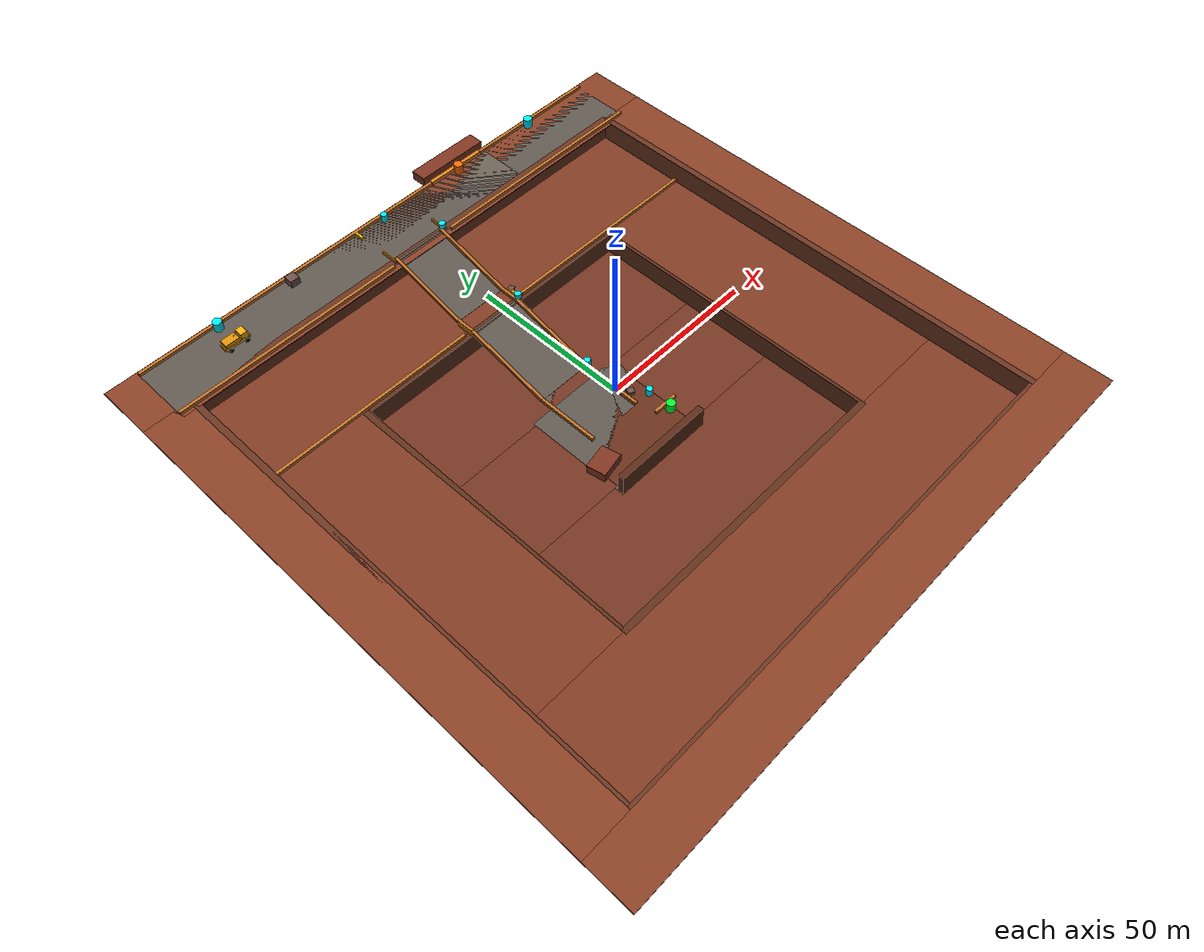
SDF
<sdf version="1.9">
  <world name="sih_mine_world">

    <gravity>0 0 -9.81</gravity>
    <physics name="1ms" type="ode">
      <max_step_size>0.001</max_step_size>
      <real_time_factor>1</real_time_factor>
      <real_time_update_rate>1000</real_time_update_rate>
    </physics>

    <plugin filename="gz-sim-physics-system" name="gz::sim::systems::Physics" />
    <plugin filename="gz-sim-user-commands-system" name="gz::sim::systems::UserCommands" />
    <plugin filename="gz-sim-scene-broadcaster-system" name="gz::sim::systems::SceneBroadcaster" />
    <plugin filename="gz-sim-sensors-system" name="gz::sim::systems::Sensors">
      <render_engine>ogre2</render_engine>
    </plugin>
    <plugin filename="gz-sim-imu-system" name="gz::sim::systems::Imu" />
    <plugin filename="gz-sim-navsat-system" name="gz::sim::systems::NavSat" />

    <spherical_coordinates>
      <surface_model>EARTH_WGS84</surface_model>
      <world_frame_orientation>ENU</world_frame_orientation>
      <latitude_deg>21.9167</latitude_deg>
      <longitude_deg>85.3333</longitude_deg>
      <elevation>450.0</elevation>
      <heading_deg>0</heading_deg>
    </spherical_coordinates>

    <scene>
      <ambient>0.48 0.45 0.42 1</ambient>
      <background>0.55 0.65 0.78 1</background>
      <shadows>true</shadows>
    </scene>
    <light name="sun" type="directional">
      <cast_shadows>true</cast_shadows>
      <pose>0 0 60 0.5 0.2 0</pose>
      <diffuse>0.95 0.90 0.82 1</diffuse>
      <specular>0.25 0.25 0.20 1</specular>
      <direction>-0.3 0.3 -1</direction>
    </light>

    <model name="Bench1_North">
      <static>true</static>
      <pose>0 87.5 -0.15 0 0 0</pose>
      <link name="link">
        <collision name="collision"><geometry><box><size>190.0 22.0 0.3</size></box></geometry><surface><friction><ode><mu>0.9</mu><mu2>0.9</mu2></ode></friction></surface></collision>
        <visual name="visual"><geometry><box><size>190.0 22.0 0.3</size></box></geometry><material><ambient>0.52 0.24 0.14 1</ambient><diffuse>0.52 0.24 0.14 1</diffuse></material></visual>
      </link>
    </model>
    <model name="Bench1_South">
      <static>true</static>
      <pose>0 -87.5 -0.15 0 0 0</pose>
      <link name="link">
        <collision name="collision"><geometry><box><size>190.0 15.0 0.3</size></box></geometry><surface><friction><ode><mu>0.9</mu><mu2>0.9</mu2></ode></friction></surface></collision>
        <visual name="visual"><geometry><box><size>190.0 15.0 0.3</size></box></geometry><material><ambient>0.52 0.24 0.14 1</ambient><diffuse>0.52 0.24 0.14 1</diffuse></material></visual>
      </link>
    </model>
    <model name="Bench1_East">
      <static>true</static>
      <pose>87.5 0 -0.15 0 0 0</pose>
      <link name="link">
        <collision name="collision"><geometry><box><size>15.0 160.0 0.3</size></box></geometry><surface><friction><ode><mu>0.9</mu><mu2>0.9</mu2></ode></friction></surface></collision>
        <visual name="visual"><geometry><box><size>15.0 160.0 0.3</size></box></geometry><material><ambient>0.52 0.24 0.14 1</ambient><diffuse>0.52 0.24 0.14 1</diffuse></material></visual>
      </link>
    </model>
    <model name="Bench1_West">
      <static>true</static>
      <pose>-87.5 0 -0.15 0 0 0</pose>
      <link name="link">
        <collision name="collision"><geometry><box><size>15.0 160.0 0.3</size></box></geometry><surface><friction><ode><mu>0.9</mu><mu2>0.9</mu2></ode></friction></surface></collision>
        <visual name="visual"><geometry><box><size>15.0 160.0 0.3</size></box></geometry><material><ambient>0.52 0.24 0.14 1</ambient><diffuse>0.52 0.24 0.14 1</diffuse></material></visual>
      </link>
    </model>

    <model name="Bench2_North">
      <static>true</static>
      <pose>0 64.0 -7.15 0 0 0</pose>
      <link name="link">
        <collision name="collision"><geometry><box><size>160.0 32.0 0.3</size></box></geometry><surface><friction><ode><mu>0.9</mu><mu2>0.9</mu2></ode></friction></surface></collision>
        <visual name="visual"><geometry><box><size>160.0 32.0 0.3</size></box></geometry><material><ambient>0.48 0.22 0.13 1</ambient><diffuse>0.48 0.22 0.13 1</diffuse></material></visual>
      </link>
    </model>
    <model name="Bench2_South">
      <static>true</static>
      <pose>0 -64.0 -7.15 0 0 0</pose>
      <link name="link">
        <collision name="collision"><geometry><box><size>160.0 32.0 0.3</size></box></geometry><surface><friction><ode><mu>0.9</mu><mu2>0.9</mu2></ode></friction></surface></collision>
        <visual name="visual"><geometry><box><size>160.0 32.0 0.3</size></box></geometry><material><ambient>0.48 0.22 0.13 1</ambient><diffuse>0.48 0.22 0.13 1</diffuse></material></visual>
      </link>
    </model>
    <model name="Bench2_East">
      <static>true</static>
      <pose>64.0 0 -7.15 0 0 0</pose>
      <link name="link">
        <collision name="collision"><geometry><box><size>32.0 96.0 0.3</size></box></geometry><surface><friction><ode><mu>0.9</mu><mu2>0.9</mu2></ode></friction></surface></collision>
        <visual name="visual"><geometry><box><size>32.0 96.0 0.3</size></box></geometry><material><ambient>0.48 0.22 0.13 1</ambient><diffuse>0.48 0.22 0.13 1</diffuse></material></visual>
      </link>
    </model>
    <model name="Bench2_West">
      <static>true</static>
      <pose>-64.0 0 -7.15 0 0 0</pose>
      <link name="link">
        <collision name="collision"><geometry><box><size>32.0 96.0 0.3</size></box></geometry><surface><friction><ode><mu>0.9</mu><mu2>0.9</mu2></ode></friction></surface></collision>
        <visual name="visual"><geometry><box><size>32.0 96.0 0.3</size></box></geometry><material><ambient>0.48 0.22 0.13 1</ambient><diffuse>0.48 0.22 0.13 1</diffuse></material></visual>
      </link>
    </model>

    <model name="Bench3_North">
      <static>true</static>
      <pose>0 31.5 -14.15 0 0 0</pose>
      <link name="link">
        <collision name="collision"><geometry><box><size>96.0 33.0 0.3</size></box></geometry><surface><friction><ode><mu>0.9</mu><mu2>0.9</mu2></ode></friction></surface></collision>
        <visual name="visual"><geometry><box><size>96.0 33.0 0.3</size></box></geometry><material><ambient>0.44 0.20 0.12 1</ambient><diffuse>0.44 0.20 0.12 1</diffuse></material></visual>
      </link>
    </model>
    <model name="Bench3_South">
      <static>true</static>
      <pose>0 -31.5 -14.15 0 0 0</pose>
      <link name="link">
        <collision name="collision"><geometry><box><size>96.0 33.0 0.3</size></box></geometry><surface><friction><ode><mu>0.9</mu><mu2>0.9</mu2></ode></friction></surface></collision>
        <visual name="visual"><geometry><box><size>96.0 33.0 0.3</size></box></geometry><material><ambient>0.44 0.20 0.12 1</ambient><diffuse>0.44 0.20 0.12 1</diffuse></material></visual>
      </link>
    </model>
    <model name="Bench3_East">
      <static>true</static>
      <pose>31.5 0 -14.15 0 0 0</pose>
      <link name="link">
        <collision name="collision"><geometry><box><size>33.0 30.0 0.3</size></box></geometry><surface><friction><ode><mu>0.9</mu><mu2>0.9</mu2></ode></friction></surface></collision>
        <visual name="visual"><geometry><box><size>33.0 30.0 0.3</size></box></geometry><material><ambient>0.44 0.20 0.12 1</ambient><diffuse>0.44 0.20 0.12 1</diffuse></material></visual>
      </link>
    </model>
    <model name="Bench3_West">
      <static>true</static>
      <pose>-31.5 0 -14.15 0 0 0</pose>
      <link name="link">
        <collision name="collision"><geometry><box><size>33.0 30.0 0.3</size></box></geometry><surface><friction><ode><mu>0.9</mu><mu2>0.9</mu2></ode></friction></surface></collision>
        <visual name="visual"><geometry><box><size>33.0 30.0 0.3</size></box></geometry><material><ambient>0.44 0.20 0.12 1</ambient><diffuse>0.44 0.20 0.12 1</diffuse></material></visual>
      </link>
    </model>
    <model name="Mine_Floor">
      <static>true</static>
      <pose>0 0 -14.15 0 0 0</pose>
      <link name="link">
        <collision name="collision"><geometry><box><size>30.0 30.0 0.3</size></box></geometry><surface><friction><ode><mu>0.9</mu><mu2>0.9</mu2></ode></friction></surface></collision>
        <visual name="visual"><geometry><box><size>30.0 30.0 0.3</size></box></geometry><material><ambient>0.40 0.18 0.10 1</ambient><diffuse>0.40 0.18 0.10 1</diffuse></material></visual>
      </link>
    </model>

    <model name="Wall1_North"><static>true</static><pose>0 80.0 -3.5 0 0 0</pose><link name="link"><collision name="collision"><geometry><box><size>160.0 2.0 7.0</size></box></geometry></collision><visual name="visual"><geometry><box><size>160.0 2.0 7.0</size></box></geometry><material><ambient>0.40 0.20 0.12 1</ambient><diffuse>0.40 0.20 0.12 1</diffuse></material></visual></link></model>
    <model name="Wall1_South"><static>true</static><pose>0 -80.0 -3.5 0 0 0</pose><link name="link"><collision name="collision"><geometry><box><size>160.0 2.0 7.0</size></box></geometry></collision><visual name="visual"><geometry><box><size>160.0 2.0 7.0</size></box></geometry><material><ambient>0.40 0.20 0.12 1</ambient><diffuse>0.40 0.20 0.12 1</diffuse></material></visual></link></model>
    <model name="Wall1_East"><static>true</static><pose>80.0 0 -3.5 0 0 0</pose><link name="link"><collision name="collision"><geometry><box><size>2.0 160.0 7.0</size></box></geometry></collision><visual name="visual"><geometry><box><size>2.0 160.0 7.0</size></box></geometry><material><ambient>0.40 0.20 0.12 1</ambient><diffuse>0.40 0.20 0.12 1</diffuse></material></visual></link></model>
    <model name="Wall1_West"><static>true</static><pose>-80.0 0 -3.5 0 0 0</pose><link name="link"><collision name="collision"><geometry><box><size>2.0 160.0 7.0</size></box></geometry></collision><visual name="visual"><geometry><box><size>2.0 160.0 7.0</size></box></geometry><material><ambient>0.40 0.20 0.12 1</ambient><diffuse>0.40 0.20 0.12 1</diffuse></material></visual></link></model>

    <model name="Wall2_North"><static>true</static><pose>0 48.0 -10.5 0 0 0</pose><link name="link"><collision name="collision"><geometry><box><size>96.0 2.0 7.0</size></box></geometry></collision><visual name="visual"><geometry><box><size>96.0 2.0 7.0</size></box></geometry><material><ambient>0.36 0.18 0.10 1</ambient><diffuse>0.36 0.18 0.10 1</diffuse></material></visual></link></model>
    <model name="Wall2_South"><static>true</static><pose>0 -48.0 -10.5 0 0 0</pose><link name="link"><collision name="collision"><geometry><box><size>96.0 2.0 7.0</size></box></geometry></collision><visual name="visual"><geometry><box><size>96.0 2.0 7.0</size></box></geometry><material><ambient>0.36 0.18 0.10 1</ambient><diffuse>0.36 0.18 0.10 1</diffuse></material></visual></link></model>
    <model name="Wall2_East"><static>true</static><pose>48.0 0 -10.5 0 0 0</pose><link name="link"><collision name="collision"><geometry><box><size>2.0 96.0 7.0</size></box></geometry></collision><visual name="visual"><geometry><box><size>2.0 96.0 7.0</size></box></geometry><material><ambient>0.36 0.18 0.10 1</ambient><diffuse>0.36 0.18 0.10 1</diffuse></material></visual></link></model>
    <model name="Wall2_West"><static>true</static><pose>-48.0 0 -10.5 0 0 0</pose><link name="link"><collision name="collision"><geometry><box><size>2.0 96.0 7.0</size></box></geometry></collision><visual name="visual"><geometry><box><size>2.0 96.0 7.0</size></box></geometry><material><ambient>0.36 0.18 0.10 1</ambient><diffuse>0.36 0.18 0.10 1</diffuse></material></visual></link></model>

    <model name="Road_Spawn_Apron">
      <static>true</static>
      <pose>0 87.5 -0.15 0 0 0</pose>
      <link name="link">
        <collision name="collision"><geometry><box><size>170 18.0 0.3</size></box></geometry><surface><friction><ode><mu>1.0</mu><mu2>0.9</mu2></ode></friction></surface></collision>
        <visual name="visual"><geometry><box><size>170 18.0 0.3</size></box></geometry><material><ambient>0.36 0.33 0.30 1</ambient><diffuse>0.36 0.33 0.30 1</diffuse></material></visual>
      </link>
    </model>
    <model name="Ramp_01">
      <static>true</static>
      <pose>0 67.0 -3.5 -2.8785979219088738 0 0</pose>
      <link name="link">
        <collision name="collision"><geometry><box><size>16.0 26.92582403567252 0.3</size></box></geometry><surface><friction><ode><mu>1.0</mu><mu2>0.9</mu2></ode></friction></surface></collision>
        <visual name="visual"><geometry><box><size>16.0 26.92582403567252 0.3</size></box></geometry><material><ambient>0.36 0.33 0.30 1</ambient><diffuse>0.36 0.33 0.30 1</diffuse></material></visual>
      </link>
    </model>
    <model name="Road_Level2_Connector">
      <static>true</static>
      <pose>0 51.0 -7.15 0 0 0</pose>
      <link name="link">
        <collision name="collision"><geometry><box><size>16.0 6.0 0.3</size></box></geometry><surface><friction><ode><mu>1.0</mu><mu2>0.9</mu2></ode></friction></surface></collision>
        <visual name="visual"><geometry><box><size>16.0 6.0 0.3</size></box></geometry><material><ambient>0.36 0.33 0.30 1</ambient><diffuse>0.36 0.33 0.30 1</diffuse></material></visual>
      </link>
    </model>
    <model name="Ramp_02">
      <static>true</static>
      <pose>0 34.0 -10.5 -2.896613990462929 0 0</pose>
      <link name="link">
        <collision name="collision"><geometry><box><size>16.0 28.861739379323623 0.3</size></box></geometry><surface><friction><ode><mu>1.0</mu><mu2>0.9</mu2></ode></friction></surface></collision>
        <visual name="visual"><geometry><box><size>16.0 28.861739379323623 0.3</size></box></geometry><material><ambient>0.36 0.33 0.30 1</ambient><diffuse>0.36 0.33 0.30 1</diffuse></material></visual>
      </link>
    </model>
    <model name="Road_Floor_to_Loading">
      <static>true</static>
      <pose>0 10.0 -14.15 0 0 0</pose>
      <link name="link">
        <collision name="collision"><geometry><box><size>16.0 20.0 0.3</size></box></geometry><surface><friction><ode><mu>1.0</mu><mu2>0.9</mu2></ode></friction></surface></collision>
        <visual name="visual"><geometry><box><size>16.0 20.0 0.3</size></box></geometry><material><ambient>0.36 0.33 0.30 1</ambient><diffuse>0.36 0.33 0.30 1</diffuse></material></visual>
      </link>
    </model>
    <model name="Turning_Area_Loading">
      <static>true</static>
      <pose>0 0.0 -14.15 0 0 0</pose>
      <link name="link">
        <collision name="collision"><geometry><box><size>32 32 0.3</size></box></geometry><surface><friction><ode><mu>1.0</mu><mu2>0.9</mu2></ode></friction></surface></collision>
        <visual name="visual"><geometry><box><size>32 32 0.3</size></box></geometry><material><ambient>0.36 0.33 0.30 1</ambient><diffuse>0.36 0.33 0.30 1</diffuse></material></visual>
      </link>
    </model>
    <model name="Dumping_Zone_Pad">
      <static>true</static>
      <pose>30 87.5 -0.15 0 0 0</pose>
      <link name="link">
        <collision name="collision"><geometry><box><size>24 18.0 0.3</size></box></geometry><surface><friction><ode><mu>1.0</mu><mu2>0.9</mu2></ode></friction></surface></collision>
        <visual name="visual"><geometry><box><size>24 18.0 0.3</size></box></geometry><material><ambient>0.40 0.36 0.32 1</ambient><diffuse>0.40 0.36 0.32 1</diffuse></material></visual>
      </link>
    </model>

    <model name="Berm_Apron_North">
      <static>true</static>
      <pose>0 97.0 0.5 0 0 0</pose>
      <link name="link">
        <collision name="collision"><geometry><box><size>170.0 1.0 1.0</size></box></geometry><surface><friction><ode><mu>0.8</mu><mu2>0.8</mu2></ode></friction></surface></collision>
        <visual name="visual"><geometry><box><size>170.0 1.0 1.0</size></box></geometry><material><ambient>0.72 0.42 0.15 1</ambient><diffuse>0.72 0.42 0.15 1</diffuse></material></visual>
      </link>
    </model>

    <model name="Berm_Apron_South_West">
      <static>true</static>
      <pose>-48.0 78.0 0.5 0 0 0</pose>
      <link name="link">
        <collision name="collision"><geometry><box><size>74.0 1.0 1.0</size></box></geometry><surface><friction><ode><mu>0.8</mu><mu2>0.8</mu2></ode></friction></surface></collision>
        <visual name="visual"><geometry><box><size>74.0 1.0 1.0</size></box></geometry><material><ambient>0.72 0.42 0.15 1</ambient><diffuse>0.72 0.42 0.15 1</diffuse></material></visual>
      </link>
    </model>

    <model name="Berm_Apron_South_East">
      <static>true</static>
      <pose>48.0 78.0 0.5 0 0 0</pose>
      <link name="link">
        <collision name="collision"><geometry><box><size>74.0 1.0 1.0</size></box></geometry><surface><friction><ode><mu>0.8</mu><mu2>0.8</mu2></ode></friction></surface></collision>
        <visual name="visual"><geometry><box><size>74.0 1.0 1.0</size></box></geometry><material><ambient>0.72 0.42 0.15 1</ambient><diffuse>0.72 0.42 0.15 1</diffuse></material></visual>
      </link>
    </model>

    <model name="Berm_Ramp01_Left">
      <static>true</static>
      <pose>-8.6 67.0 -3.0 -2.8785979219088738 0 0</pose>
      <link name="link">
        <collision name="collision"><geometry><box><size>1.0 26.9 1.0</size></box></geometry><surface><friction><ode><mu>0.8</mu><mu2>0.8</mu2></ode></friction></surface></collision>
        <visual name="visual"><geometry><box><size>1.0 26.9 1.0</size></box></geometry><material><ambient>0.72 0.42 0.15 1</ambient><diffuse>0.72 0.42 0.15 1</diffuse></material></visual>
      </link>
    </model>

    <model name="Berm_Ramp01_Right">
      <static>true</static>
      <pose>8.6 67.0 -3.0 -2.8785979219088738 0 0</pose>
      <link name="link">
        <collision name="collision"><geometry><box><size>1.0 26.9 1.0</size></box></geometry><surface><friction><ode><mu>0.8</mu><mu2>0.8</mu2></ode></friction></surface></collision>
        <visual name="visual"><geometry><box><size>1.0 26.9 1.0</size></box></geometry><material><ambient>0.72 0.42 0.15 1</ambient><diffuse>0.72 0.42 0.15 1</diffuse></material></visual>
      </link>
    </model>

    <model name="Berm_Bench2_West">
      <static>true</static>
      <pose>-8.6 51.0 -6.5 0 0 0</pose>
      <link name="link">
        <collision name="collision"><geometry><box><size>1.0 6.0 1.0</size></box></geometry><surface><friction><ode><mu>0.8</mu><mu2>0.8</mu2></ode></friction></surface></collision>
        <visual name="visual"><geometry><box><size>1.0 6.0 1.0</size></box></geometry><material><ambient>0.72 0.42 0.15 1</ambient><diffuse>0.72 0.42 0.15 1</diffuse></material></visual>
      </link>
    </model>
    <model name="Berm_Bench2_East">
      <static>true</static>
      <pose>8.6 51.0 -6.5 0 0 0</pose>
      <link name="link">
        <collision name="collision"><geometry><box><size>1.0 6.0 1.0</size></box></geometry><surface><friction><ode><mu>0.8</mu><mu2>0.8</mu2></ode></friction></surface></collision>
        <visual name="visual"><geometry><box><size>1.0 6.0 1.0</size></box></geometry><material><ambient>0.72 0.42 0.15 1</ambient><diffuse>0.72 0.42 0.15 1</diffuse></material></visual>
      </link>
    </model>

    <model name="Berm_Bench2_Dropoff_West">
      <static>true</static>
      <pose>-48.0 48.5 -6.5 0 0 0</pose>
      <link name="link">
        <collision name="collision"><geometry><box><size>74.0 1.0 1.0</size></box></geometry><surface><friction><ode><mu>0.8</mu><mu2>0.8</mu2></ode></friction></surface></collision>
        <visual name="visual"><geometry><box><size>74.0 1.0 1.0</size></box></geometry><material><ambient>0.72 0.42 0.15 1</ambient><diffuse>0.72 0.42 0.15 1</diffuse></material></visual>
      </link>
    </model>
    <model name="Berm_Bench2_Dropoff_East">
      <static>true</static>
      <pose>48.0 48.5 -6.5 0 0 0</pose>
      <link name="link">
        <collision name="collision"><geometry><box><size>74.0 1.0 1.0</size></box></geometry><surface><friction><ode><mu>0.8</mu><mu2>0.8</mu2></ode></friction></surface></collision>
        <visual name="visual"><geometry><box><size>74.0 1.0 1.0</size></box></geometry><material><ambient>0.72 0.42 0.15 1</ambient><diffuse>0.72 0.42 0.15 1</diffuse></material></visual>
      </link>
    </model>

    <model name="Berm_Ramp02_Left">
      <static>true</static>
      <pose>-8.6 34.0 -10.0 -2.896613990462929 0 0</pose>
      <link name="link">
        <collision name="collision"><geometry><box><size>1.0 28.8 1.0</size></box></geometry><surface><friction><ode><mu>0.8</mu><mu2>0.8</mu2></ode></friction></surface></collision>
        <visual name="visual"><geometry><box><size>1.0 28.8 1.0</size></box></geometry><material><ambient>0.72 0.42 0.15 1</ambient><diffuse>0.72 0.42 0.15 1</diffuse></material></visual>
      </link>
    </model>

    <model name="Berm_Ramp02_Right">
      <static>true</static>
      <pose>8.6 34.0 -10.0 -2.896613990462929 0 0</pose>
      <link name="link">
        <collision name="collision"><geometry><box><size>1.0 28.8 1.0</size></box></geometry><surface><friction><ode><mu>0.8</mu><mu2>0.8</mu2></ode></friction></surface></collision>
        <visual name="visual"><geometry><box><size>1.0 28.8 1.0</size></box></geometry><material><ambient>0.72 0.42 0.15 1</ambient><diffuse>0.72 0.42 0.15 1</diffuse></material></visual>
      </link>
    </model>

    <model name="Berm_PitFloor_West">
      <static>true</static>
      <pose>-8.6 10.0 -13.5 0 0 0</pose>
      <link name="link">
        <collision name="collision"><geometry><box><size>1.0 20.0 1.0</size></box></geometry><surface><friction><ode><mu>0.8</mu><mu2>0.8</mu2></ode></friction></surface></collision>
        <visual name="visual"><geometry><box><size>1.0 20.0 1.0</size></box></geometry><material><ambient>0.72 0.42 0.15 1</ambient><diffuse>0.72 0.42 0.15 1</diffuse></material></visual>
      </link>
    </model>
    <model name="Berm_PitFloor_East">
      <static>true</static>
      <pose>8.6 10.0 -13.5 0 0 0</pose>
      <link name="link">
        <collision name="collision"><geometry><box><size>1.0 20.0 1.0</size></box></geometry><surface><friction><ode><mu>0.8</mu><mu2>0.8</mu2></ode></friction></surface></collision>
        <visual name="visual"><geometry><box><size>1.0 20.0 1.0</size></box></geometry><material><ambient>0.72 0.42 0.15 1</ambient><diffuse>0.72 0.42 0.15 1</diffuse></material></visual>
      </link>
    </model>

    <model name="Rock_Hazard_01">
      <static>true</static>
      <pose>-35.0 94.5 1.25 0 0 0</pose>
      <link name="link">
        <collision name="collision">
          <geometry><box><size>3.0 3.0 2.5</size></box></geometry>
          <surface><friction><ode><mu>0.9</mu><mu2>0.9</mu2></ode></friction></surface>
        </collision>
        <visual name="visual">
          <geometry><box><size>3.0 3.0 2.5</size></box></geometry>
          <material><ambient>0.42 0.30 0.28 1</ambient><diffuse>0.42 0.30 0.28 1</diffuse></material>
        </visual>
      </link>
    </model>

    <model name="Rock_Hazard_02">
      <static>true</static>
      <pose>10.5 52.0 -6.5 0 0 0.5</pose>
      <link name="link">
        <collision name="collision">
          <geometry><box><size>1.8 1.6 1.0</size></box></geometry>
          <surface><friction><ode><mu>0.9</mu><mu2>0.9</mu2></ode></friction></surface>
        </collision>
        <visual name="visual">
          <geometry><box><size>1.8 1.6 1.0</size></box></geometry>
          <material><ambient>0.42 0.30 0.28 1</ambient><diffuse>0.42 0.30 0.28 1</diffuse></material>
        </visual>
      </link>
    </model>

    <model name="Rock_Hazard_03">
      <static>true</static>
      <pose>10.5 4.0 -13.4 0 0 -0.4</pose>
      <link name="link">
        <collision name="collision">
          <geometry><box><size>2.0 1.8 1.2</size></box></geometry>
          <surface><friction><ode><mu>0.9</mu><mu2>0.9</mu2></ode></friction></surface>
        </collision>
        <visual name="visual">
          <geometry><box><size>2.0 1.8 1.2</size></box></geometry>
          <material><ambient>0.42 0.30 0.28 1</ambient><diffuse>0.42 0.30 0.28 1</diffuse></material>
        </visual>
      </link>
    </model>

    <model name="Safety_Barrier_Metal_01">
      <static>true</static>
      <pose>-10.0 95.0 0.5 0 0 0</pose>
      <link name="link">
        <collision name="collision">
          <geometry><box><size>0.8 3.0 1.0</size></box></geometry>
          <surface><friction><ode><mu>0.7</mu><mu2>0.7</mu2></ode></friction></surface>
        </collision>
        <visual name="visual">
          <geometry><box><size>0.8 3.0 1.0</size></box></geometry>
          <material><ambient>0.95 0.75 0.05 1</ambient><diffuse>0.95 0.75 0.05 1</diffuse></material>
        </visual>
      </link>
    </model>

    <model name="Safety_Barrier_Metal_02">
      <static>true</static>
      <pose>10.0 50.0 -6.5 0 0 0</pose>
      <link name="link">
        <collision name="collision">
          <geometry><box><size>0.8 3.5 1.0</size></box></geometry>
          <surface><friction><ode><mu>0.7</mu><mu2>0.7</mu2></ode></friction></surface>
        </collision>
        <visual name="visual">
          <geometry><box><size>0.8 3.5 1.0</size></box></geometry>
          <material><ambient>0.95 0.75 0.05 1</ambient><diffuse>0.95 0.75 0.05 1</diffuse></material>
        </visual>
      </link>
    </model>

    <model name="Barrier_Ramp01_Left"><static>true</static><pose>-9.5 82.0 0.5 0 0 1.5707963267948966</pose><link name="link"><collision name="collision"><geometry><box><size>6.0 0.4 1.0</size></box></geometry><surface><friction><ode><mu>0.5</mu><mu2>0.5</mu2></ode></friction></surface></collision><visual name="visual"><geometry><box><size>6.0 0.4 1.0</size></box></geometry><material><ambient>0.95 0.55 0.05 1</ambient><diffuse>0.95 0.55 0.05 1</diffuse></material></visual></link></model>
    <model name="Barrier_Ramp01_Right"><static>true</static><pose>9.5 82.0 0.5 0 0 1.5707963267948966</pose><link name="link"><collision name="collision"><geometry><box><size>6.0 0.4 1.0</size></box></geometry><surface><friction><ode><mu>0.5</mu><mu2>0.5</mu2></ode></friction></surface></collision><visual name="visual"><geometry><box><size>6.0 0.4 1.0</size></box></geometry><material><ambient>0.95 0.55 0.05 1</ambient><diffuse>0.95 0.55 0.05 1</diffuse></material></visual></link></model>
    <model name="Barrier_Ramp02_Left"><static>true</static><pose>-9.5 50.0 -6.5 0 0 1.5707963267948966</pose><link name="link"><collision name="collision"><geometry><box><size>6.0 0.4 1.0</size></box></geometry><surface><friction><ode><mu>0.5</mu><mu2>0.5</mu2></ode></friction></surface></collision><visual name="visual"><geometry><box><size>6.0 0.4 1.0</size></box></geometry><material><ambient>0.95 0.55 0.05 1</ambient><diffuse>0.95 0.55 0.05 1</diffuse></material></visual></link></model>
    <model name="Barrier_Ramp02_Right"><static>true</static><pose>9.5 50.0 -6.5 0 0 1.5707963267948966</pose><link name="link"><collision name="collision"><geometry><box><size>6.0 0.4 1.0</size></box></geometry><surface><friction><ode><mu>0.5</mu><mu2>0.5</mu2></ode></friction></surface></collision><visual name="visual"><geometry><box><size>6.0 0.4 1.0</size></box></geometry><material><ambient>0.95 0.55 0.05 1</ambient><diffuse>0.95 0.55 0.05 1</diffuse></material></visual></link></model>

    <model name="Dumping_Zone_Stop_Berm">
      <static>true</static>
      <pose>30.0 97.0 0.6 0 0 0</pose>
      <link name="link">
        <collision name="collision"><geometry><box><size>20.0 1.2 1.2</size></box></geometry><surface><friction><ode><mu>0.9</mu><mu2>0.9</mu2></ode></friction></surface></collision>
        <visual name="visual"><geometry><box><size>20.0 1.2 1.2</size></box></geometry><material><ambient>0.85 0.50 0.10 1</ambient><diffuse>0.85 0.50 0.10 1</diffuse></material></visual>
      </link>
    </model>

    <model name="Dumping_Zone_Stockpile">
      <static>true</static>
      <pose>30.0 100.5 1.5 0 0 0</pose>
      <link name="link">
        <collision name="collision"><geometry><box><size>24.0 5.0 3.0</size></box></geometry><surface><friction><ode><mu>0.9</mu><mu2>0.9</mu2></ode></friction></surface></collision>
        <visual name="visual"><geometry><box><size>24.0 5.0 3.0</size></box></geometry><material><ambient>0.48 0.20 0.12 1</ambient><diffuse>0.48 0.20 0.12 1</diffuse></material></visual>
      </link>
    </model>

    <model name="Loading_Zone_Extraction_Face">
      <static>true</static>
      <pose>0.0 -17.0 -10.5 0 0 0</pose>
      <link name="link">
        <collision name="collision"><geometry><box><size>32.0 2.0 7.0</size></box></geometry><surface><friction><ode><mu>0.9</mu><mu2>0.9</mu2></ode></friction></surface></collision>
        <visual name="visual"><geometry><box><size>32.0 2.0 7.0</size></box></geometry><material><ambient>0.34 0.16 0.08 1</ambient><diffuse>0.34 0.16 0.08 1</diffuse></material></visual>
      </link>
    </model>

    <model name="Loading_Zone_Stockpile">
      <static>true</static>
      <pose>-13.0 -8.0 -12.5 0 0 0.2</pose>
      <link name="link">
        <collision name="collision"><geometry><box><size>8.0 6.0 3.0</size></box></geometry><surface><friction><ode><mu>0.9</mu><mu2>0.9</mu2></ode></friction></surface></collision>
        <visual name="visual"><geometry><box><size>8.0 6.0 3.0</size></box></geometry><material><ambient>0.48 0.20 0.12 1</ambient><diffuse>0.48 0.20 0.12 1</diffuse></material></visual>
      </link>
    </model>

    <model name="Loading_Zone_Berm">
      <static>true</static>
      <pose>14.0 -6.0 -13.5 0 0 0</pose>
      <link name="link">
        <collision name="collision"><geometry><box><size>8.0 1.0 1.0</size></box></geometry><surface><friction><ode><mu>0.8</mu><mu2>0.8</mu2></ode></friction></surface></collision>
        <visual name="visual"><geometry><box><size>8.0 1.0 1.0</size></box></geometry><material><ambient>0.72 0.42 0.15 1</ambient><diffuse>0.72 0.42 0.15 1</diffuse></material></visual>
      </link>
    </model>

    <model name="Spawn_Marker_01">
      <static>true</static>
      <pose>-60 95.5 1.5 0 0 0</pose>
      <link name="link">
        <visual name="visual"><geometry><cylinder><radius>1.4</radius><length>3.0</length></cylinder></geometry><material><ambient>0.0 0.9 1.0 1</ambient><diffuse>0.0 0.9 1.0 1</diffuse></material></visual>
      </link>
    </model>
    <model name="Spawn_Marker_02">
      <static>true</static>
      <pose>60 95.5 1.5 0 0 0</pose>
      <link name="link">
        <visual name="visual"><geometry><cylinder><radius>1.4</radius><length>3.0</length></cylinder></geometry><material><ambient>0.0 0.9 1.0 1</ambient><diffuse>0.0 0.9 1.0 1</diffuse></material></visual>
      </link>
    </model>
    <model name="Dumping_Zone_Marker">
      <static>true</static>
      <pose>30 95.5 1.5 0 0 0</pose>
      <link name="link">
        <visual name="visual"><geometry><cylinder><radius>1.4</radius><length>3.0</length></cylinder></geometry><material><ambient>1.0 0.4 0.0 1</ambient><diffuse>1.0 0.4 0.0 1</diffuse></material></visual>
      </link>
    </model>
    <model name="Loading_Zone_Marker">
      <static>true</static>
      <pose>14.0 -8.0 -12.5 0 0 0</pose>
      <link name="link">
        <visual name="visual"><geometry><cylinder><radius>1.4</radius><length>3.0</length></cylinder></geometry><material><ambient>0.0 1.0 0.2 1</ambient><diffuse>0.0 1.0 0.2 1</diffuse></material></visual>
      </link>
    </model>
    <model name="Waypoint_01">
      <static>true</static>
      <pose>0 95.5 1.2 0 0 0</pose>
      <link name="link">
        <visual name="visual"><geometry><cylinder><radius>1.0</radius><length>2.4</length></cylinder></geometry><material><ambient>0.0 0.9 1.0 1</ambient><diffuse>0.0 0.9 1.0 1</diffuse></material></visual>
      </link>
    </model>
    <model name="Waypoint_02">
      <static>true</static>
      <pose>9.5 80.0 1.2 0 0 0</pose>
      <link name="link">
        <visual name="visual"><geometry><cylinder><radius>1.0</radius><length>2.4</length></cylinder></geometry><material><ambient>0.0 0.9 1.0 1</ambient><diffuse>0.0 0.9 1.0 1</diffuse></material></visual>
      </link>
    </model>
    <model name="Waypoint_03">
      <static>true</static>
      <pose>9.5 48.0 -5.8 0 0 0</pose>
      <link name="link">
        <visual name="visual"><geometry><cylinder><radius>1.0</radius><length>2.4</length></cylinder></geometry><material><ambient>0.0 0.9 1.0 1</ambient><diffuse>0.0 0.9 1.0 1</diffuse></material></visual>
      </link>
    </model>
    <model name="Waypoint_04">
      <static>true</static>
      <pose>9.5 20.0 -12.8 0 0 0</pose>
      <link name="link">
        <visual name="visual"><geometry><cylinder><radius>1.0</radius><length>2.4</length></cylinder></geometry><material><ambient>0.0 0.9 1.0 1</ambient><diffuse>0.0 0.9 1.0 1</diffuse></material></visual>
      </link>
    </model>
    <model name="Waypoint_05">
      <static>true</static>
      <pose>14.0 0.0 -12.8 0 0 0</pose>
      <link name="link">
        <visual name="visual"><geometry><cylinder><radius>1.0</radius><length>2.4</length></cylinder></geometry><material><ambient>0.0 0.9 1.0 1</ambient><diffuse>0.0 0.9 1.0 1</diffuse></material></visual>
      </link>
    </model>

    <include>
      <uri>model://hemm_dumper</uri>
      <name>HEMM_Dumper_01</name>
      <pose>-60 87.5 0 0 0 0</pose>
    </include>

  </world>
</sdf>

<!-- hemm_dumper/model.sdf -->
<sdf version="1.9">
  <model name="HEMM_Dumper_01">
    <pose>0 0 0 0 0 0</pose>
    <self_collide>false</self_collide>

    <link name="chassis">
      <pose>0 0 1.25 0 0 0</pose>
      <inertial>
        <mass>9000</mass>
        <inertia>
          <ixx>6630</ixx><iyy>48750</iyy><izz>53880</izz>
          <ixy>0</ixy><ixz>0</ixz><iyz>0</iyz>
        </inertia>
      </inertial>
      <collision name="collision">
        <geometry><box><size>8.0 2.8 1.0</size></box></geometry>
        <surface>
          <friction><ode><mu>0.8</mu><mu2>0.05</mu2></ode></friction>
        </surface>
      </collision>
      <visual name="visual">
        <geometry><box><size>8.0 2.8 1.0</size></box></geometry>
        <material>
          <ambient>0.95 0.65 0.05 1</ambient>
          <diffuse>0.95 0.65 0.05 1</diffuse>
        </material>
      </visual>

      <!-- IMU Sensor on Chassis -->
      <sensor name="imu" type="imu">
        <always_on>1</always_on>
        <update_rate>50</update_rate>
        <visualize>true</visualize>
        <topic>/imu</topic>
      </sensor>

      <!-- GPS / NavSat Sensor on Chassis -->
      <sensor name="gps" type="navsat">
        <always_on>1</always_on>
        <update_rate>5</update_rate>
        <topic>/gps</topic>
      </sensor>
    </link>

    <!-- Front cab (fixed to chassis) -->
    <link name="front_body">
      <pose>2.45 0 2.35 0 0 0</pose>
      <inertial>
        <mass>1800</mass>
        <inertia>
          <ixx>1902</ixx><iyy>1452</iyy><izz>1902</izz>
          <ixy>0</ixy><ixz>0</ixz><iyz>0</iyz>
        </inertia>
      </inertial>
      <collision name="collision">
        <geometry><box><size>2.2 2.8 2.2</size></box></geometry>
      </collision>
      <visual name="visual">
        <geometry><box><size>2.2 2.8 2.2</size></box></geometry>
        <material>
          <ambient>0.95 0.65 0.05 1</ambient>
          <diffuse>0.95 0.65 0.05 1</diffuse>
        </material>
      </visual>
    </link>

    <!-- Dump bed (fixed to chassis) -->
    <link name="dump_bed">
      <pose>-1.35 0 2.15 0 0 0</pose>
      <inertial>
        <mass>1400</mass>
        <inertia>
          <ixx>1177</ixx><iyy>2625</iyy><izz>3277</izz>
          <ixy>0</ixy><ixz>0</ixz><iyz>0</iyz>
        </inertia>
      </inertial>
      <collision name="collision">
        <geometry><box><size>4.5 2.8 1.5</size></box></geometry>
      </collision>
      <visual name="visual">
        <geometry><box><size>4.5 2.8 1.5</size></box></geometry>
        <material>
          <ambient>0.85 0.55 0.03 1</ambient>
          <diffuse>0.85 0.55 0.03 1</diffuse>
        </material>
      </visual>
    </link>

    <!-- Sensor mast (fixed to chassis) -->
    <link name="sensor_mast">
      <pose>0 0 3.15 0 0 0</pose>
      <inertial>
        <mass>80</mass>
        <inertia>
          <ixx>20</ixx><iyy>20</iyy><izz>20</izz>
          <ixy>0</ixy><ixz>0</ixz><iyz>0</iyz>
        </inertia>
      </inertial>
      <visual name="visual">
        <geometry><cylinder><radius>0.10</radius><length>1.0</length></cylinder></geometry>
        <material><ambient>0.05 0.05 0.05 1</ambient><diffuse>0.05 0.05 0.05 1</diffuse></material>
      </visual>
    </link>

    <!-- Left Front Wheel -->
    <link name="left_front_wheel">
      <pose>2.65 1.75 0.70 1.5707963 0 0</pose>
      <inertial>
        <mass>450</mass>
        <inertia>
          <ixx>65</ixx><iyy>65</iyy><izz>110</izz>
          <ixy>0</ixy><ixz>0</ixz><iyz>0</iyz>
        </inertia>
      </inertial>
      <collision name="collision">
        <geometry><cylinder><radius>0.70</radius><length>0.50</length></cylinder></geometry>
        <surface>
          <friction>
            <ode>
              <mu>1.5</mu>
              <mu2>0.05</mu2>
              <fdir1>1 0 0</fdir1>
            </ode>
          </friction>
          <contact>
            <ode>
              <kp>1000000</kp>
              <kd>100</kd>
              <min_depth>0.001</min_depth>
            </ode>
          </contact>
        </surface>
      </collision>
      <visual name="visual">
        <geometry><cylinder><radius>0.70</radius><length>0.50</length></cylinder></geometry>
        <material><ambient>0.04 0.04 0.04 1</ambient><diffuse>0.04 0.04 0.04 1</diffuse></material>
      </visual>
    </link>

    <!-- Right Front Wheel -->
    <link name="right_front_wheel">
      <pose>2.65 -1.75 0.70 1.5707963 0 0</pose>
      <inertial>
        <mass>450</mass>
        <inertia>
          <ixx>65</ixx><iyy>65</iyy><izz>110</izz>
          <ixy>0</ixy><ixz>0</ixz><iyz>0</iyz>
        </inertia>
      </inertial>
      <collision name="collision">
        <geometry><cylinder><radius>0.70</radius><length>0.50</length></cylinder></geometry>
        <surface>
          <friction>
            <ode>
              <mu>1.5</mu>
              <mu2>0.05</mu2>
              <fdir1>1 0 0</fdir1>
            </ode>
          </friction>
          <contact>
            <ode>
              <kp>1000000</kp>
              <kd>100</kd>
              <min_depth>0.001</min_depth>
            </ode>
          </contact>
        </surface>
      </collision>
      <visual name="visual">
        <geometry><cylinder><radius>0.70</radius><length>0.50</length></cylinder></geometry>
        <material><ambient>0.04 0.04 0.04 1</ambient><diffuse>0.04 0.04 0.04 1</diffuse></material>
      </visual>
    </link>

    <!-- Left Rear Wheel -->
    <link name="left_rear_wheel">
      <pose>-2.65 1.75 0.70 1.5707963 0 0</pose>
      <inertial>
        <mass>500</mass>
        <inertia>
          <ixx>72</ixx><iyy>72</iyy><izz>122</izz>
          <ixy>0</ixy><ixz>0</ixz><iyz>0</iyz>
        </inertia>
      </inertial>
      <collision name="collision">
        <geometry><cylinder><radius>0.70</radius><length>0.50</length></cylinder></geometry>
        <surface>
          <friction>
            <ode>
              <mu>1.5</mu>
              <mu2>0.05</mu2>
              <fdir1>1 0 0</fdir1>
            </ode>
          </friction>
          <contact>
            <ode>
              <kp>1000000</kp>
              <kd>100</kd>
              <min_depth>0.001</min_depth>
            </ode>
          </contact>
        </surface>
      </collision>
      <visual name="visual">
        <geometry><cylinder><radius>0.70</radius><length>0.50</length></cylinder></geometry>
        <material><ambient>0.04 0.04 0.04 1</ambient><diffuse>0.04 0.04 0.04 1</diffuse></material>
      </visual>
    </link>

    <!-- Right Rear Wheel -->
    <link name="right_rear_wheel">
      <pose>-2.65 -1.75 0.70 1.5707963 0 0</pose>
      <inertial>
        <mass>500</mass>
        <inertia>
          <ixx>72</ixx><iyy>72</iyy><izz>122</izz>
          <ixy>0</ixy><ixz>0</ixz><iyz>0</iyz>
        </inertia>
      </inertial>
      <collision name="collision">
        <geometry><cylinder><radius>0.70</radius><length>0.50</length></cylinder></geometry>
        <surface>
          <friction>
            <ode>
              <mu>1.5</mu>
              <mu2>0.05</mu2>
              <fdir1>1 0 0</fdir1>
            </ode>
          </friction>
          <contact>
            <ode>
              <kp>1000000</kp>
              <kd>100</kd>
              <min_depth>0.001</min_depth>
            </ode>
          </contact>
        </surface>
      </collision>
      <visual name="visual">
        <geometry><cylinder><radius>0.70</radius><length>0.50</length></cylinder></geometry>
        <material><ambient>0.04 0.04 0.04 1</ambient><diffuse>0.04 0.04 0.04 1</diffuse></material>
      </visual>
    </link>

    <joint name="front_left_wheel_joint" type="revolute">
      <parent>chassis</parent><child>left_front_wheel</child>
      <axis>
        <xyz expressed_in="__model__">0 1 0</xyz>
        <limit>
          <lower>-1e16</lower><upper>1e16</upper>
          <effort>30000</effort><velocity>20</velocity>
        </limit>
        <dynamics><damping>50</damping><friction>1.0</friction></dynamics>
      </axis>
    </joint>

    <joint name="front_right_wheel_joint" type="revolute">
      <parent>chassis</parent><child>right_front_wheel</child>
      <axis>
        <xyz expressed_in="__model__">0 1 0</xyz>
        <limit>
          <lower>-1e16</lower><upper>1e16</upper>
          <effort>30000</effort><velocity>20</velocity>
        </limit>
        <dynamics><damping>50</damping><friction>1.0</friction></dynamics>
      </axis>
    </joint>

    <joint name="rear_left_wheel_joint" type="revolute">
      <parent>chassis</parent><child>left_rear_wheel</child>
      <axis>
        <xyz expressed_in="__model__">0 1 0</xyz>
        <limit>
          <lower>-1e16</lower><upper>1e16</upper>
          <effort>30000</effort><velocity>20</velocity>
        </limit>
        <dynamics><damping>50</damping><friction>1.0</friction></dynamics>
      </axis>
    </joint>

    <joint name="rear_right_wheel_joint" type="revolute">
      <parent>chassis</parent><child>right_rear_wheel</child>
      <axis>
        <xyz expressed_in="__model__">0 1 0</xyz>
        <limit>
          <lower>-1e16</lower><upper>1e16</upper>
          <effort>30000</effort><velocity>20</velocity>
        </limit>
        <dynamics><damping>50</damping><friction>1.0</friction></dynamics>
      </axis>
    </joint>

    <!-- Fixed body joints -->
    <joint name="front_body_joint" type="fixed">
      <parent>chassis</parent><child>front_body</child>
    </joint>
    <joint name="dump_bed_joint" type="fixed">
      <parent>chassis</parent><child>dump_bed</child>
    </joint>
    <joint name="sensor_mast_joint" type="fixed">
      <parent>chassis</parent><child>sensor_mast</child>
    </joint>

    <plugin filename="gz-sim-diff-drive-system" name="gz::sim::systems::DiffDrive">
      <left_joint>front_left_wheel_joint</left_joint>
      <left_joint>rear_left_wheel_joint</left_joint>
      <right_joint>front_right_wheel_joint</right_joint>
      <right_joint>rear_right_wheel_joint</right_joint>
      <wheel_separation>3.50</wheel_separation>
      <wheel_radius>0.70</wheel_radius>
      <topic>/cmd_vel</topic>
      <odom_topic>/odom</odom_topic>
      <frame_id>odom</frame_id>
      <child_frame_id>base_link</child_frame_id>
      <odom_publish_frequency>30</odom_publish_frequency>
      <max_linear_acceleration>2.0</max_linear_acceleration>
      <min_linear_acceleration>-2.0</min_linear_acceleration>
      <max_angular_acceleration>1.5</max_angular_acceleration>
      <min_angular_acceleration>-1.5</min_angular_acceleration>
    </plugin>
    <!-- ==================== LiDAR SENSOR (360° Horizontal Scan) ==================== -->
    <link name="lidar_link">
      <pose>4.05 0 0.85 0 0 0</pose>
      <inertial>
        <mass>1.0</mass>
        <inertia>
          <ixx>0.001</ixx><iyy>0.001</iyy><izz>0.001</izz>
          <ixy>0</ixy><ixz>0</ixz><iyz>0</iyz>
        </inertia>
      </inertial>
      <visual name="visual">
        <geometry><cylinder><radius>0.15</radius><length>0.15</length></cylinder></geometry>
        <material><ambient>0.1 0.1 0.1 1</ambient><diffuse>0.1 0.1 0.1 1</diffuse></material>
      </visual>
      <sensor name="lidar" type="gpu_lidar">
        <topic>/scan</topic>
        <update_rate>10</update_rate>
        <ray>
          <scan>
            <horizontal>
              <samples>360</samples>
              <resolution>1</resolution>
              <min_angle>-3.14159265</min_angle>
              <max_angle>3.14159265</max_angle>
            </horizontal>
          </scan>
          <range>
            <min>0.1</min>
            <max>50.0</max>
            <resolution>0.05</resolution>
          </range>
        </ray>
        <always_on>true</always_on>
        <visualize>true</visualize>
      </sensor>
    </link>

    <joint name="lidar_joint" type="fixed">
      <parent>chassis</parent>
      <child>lidar_link</child>
    </joint>

    <!-- ==================== FRONT CAMERAS (RGB & Depth) ==================== -->
    <link name="camera_link">
      <pose>3.55 0 2.5 0 0 0</pose>
      <inertial>
        <mass>0.5</mass>
        <inertia>
          <ixx>0.0005</ixx><iyy>0.0005</iyy><izz>0.0005</izz>
          <ixy>0</ixy><ixz>0</ixz><iyz>0</iyz>
        </inertia>
      </inertial>
      <visual name="visual">
        <geometry><box><size>0.15 0.30 0.15</size></box></geometry>
        <material><ambient>0.2 0.2 0.8 1</ambient><diffuse>0.2 0.2 0.8 1</diffuse></material>
      </visual>

      <!-- Front-facing RGB Camera -->
      <sensor name="camera" type="camera">
        <topic>/camera/image_raw</topic>
        <update_rate>15</update_rate>
        <camera>
          <horizontal_fov>1.570796</horizontal_fov>
          <image>
            <width>640</width>
            <height>480</height>
            <format>R8G8B8</format>
          </image>
          <clip>
            <near>0.2</near>
            <far>100.0</far>
          </clip>
        </camera>
        <always_on>1</always_on>
        <visualize>true</visualize>
      </sensor>

      <!-- Front-facing Depth Camera -->
      <sensor name="depth_camera" type="depth_camera">
        <topic>/depth/image_raw</topic>
        <update_rate>10</update_rate>
        <camera>
          <horizontal_fov>1.396263</horizontal_fov>
          <image>
            <width>320</width>
            <height>240</height>
            <format>R_FLOAT32</format>
          </image>
          <clip>
            <near>0.5</near>
            <far>50.0</far>
          </clip>
        </camera>
        <always_on>1</always_on>
        <visualize>true</visualize>
      </sensor>
    </link>

    <joint name="camera_joint" type="fixed">
      <parent>chassis</parent>
      <child>camera_link</child>
    </joint>
  </model>
</sdf>
